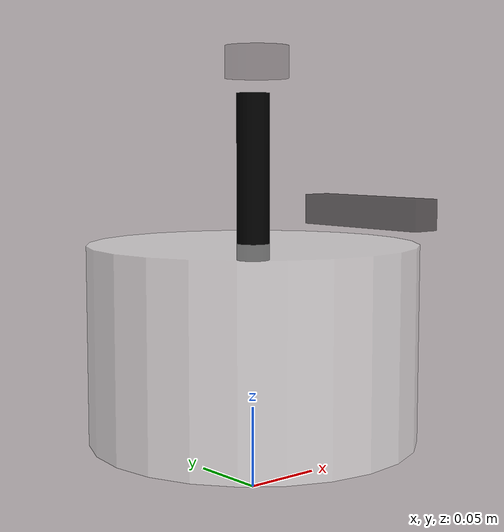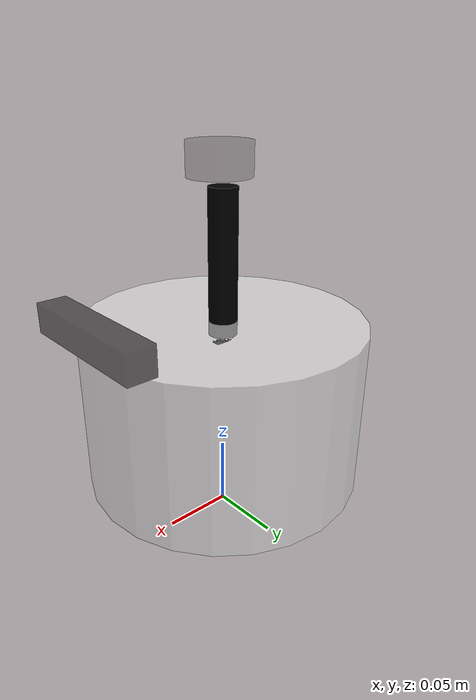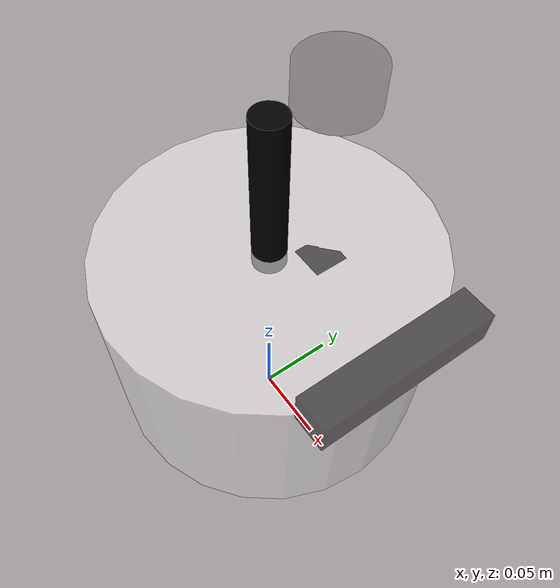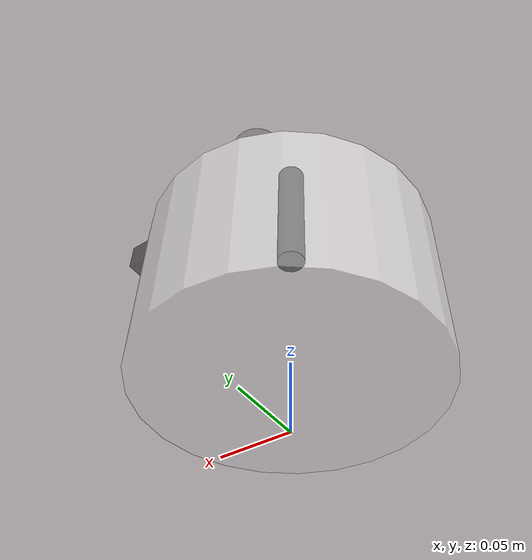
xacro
<?xml version="1.0"?>
<robot xmlns:xacro="http://www.ros.org/wiki/xacro" name="fishbot">
    <xacro:include filename="$(find hello_robot)/urdf/base.urdf.xacro"/>
    <xacro:include filename="$(find hello_robot)/urdf/sensor/imu.urdf.xacro"/>
    <xacro:include filename="$(find hello_robot)/urdf/sensor/camera.urdf.xacro"/>
    <xacro:include filename="$(find hello_robot)/urdf/sensor/laser.urdf.xacro"/>
    <!-- 基座 -->
    <xacro:base_xacro length="0.12" radius="0.1"/>
    <!-- IMU传感器 -->
    <xacro:imu_xacro imu_name="imu_up" xyz="0.0 0.0 0.03"/>
    <xacro:imu_xacro imu_name="imu_down" xyz="0.0 0.0 -0.03"/>
    <!-- 相机传感器 -->
    <xacro:camera_xacro xyz="0.1 0.0 0.075"/>
    <!-- 激光传感器 -->
    <xacro:laser_xacro xyz="0.0 0.0 0.10"/>
</robot>

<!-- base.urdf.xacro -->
<robot xmlns:xacro="http://www.ros.org/wiki/xacro">
    <xacro:include filename="$(find hello_robot)/urdf/common_inertial.xacro"/>
    <xacro:macro name="base_xacro" params="length radius">
        <link name="base_footprint"></link>
        <link name="base_link">
        <visual>
            <!-- 沿着自己几何中心的偏移和旋转量 -->
            <origin xyz="0.0 0.0 0.0" rpy="0.0 0.0 0.0" />
            <geometry>
                <cylinder radius="${radius}" length="${length}"/>
            </geometry>
            <material name="white">
                <color rgba="1.0 1.0 1.0 0.5"/>
            </material>
        </visual>
        <collision>
            <origin xyz="0.0 0.0 0.0" rpy="0.0 0.0 0.0" />
            <geometry>
                <cylinder radius="${radius}" length="${length}"/>
            </geometry>
        </collision>
        <xacro:cylinder_inertia m="1.0" r="${radius}" h="${length}"/>
     </link>
     <joint name="joint_name" type="fixed">
        <origin xyz="0.0 0.0 ${length/2 + 0.032 - 0.001}" rpy="0.0 0.0 0.0"/>
        <parent link="base_footprint"/>
        <child link="base_link"/>
     </joint>
    </xacro:macro>
</robot>

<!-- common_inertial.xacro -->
<robot xmlns:xacro="http://www.ros.org/wiki/xacro">
    <xacro:macro name="box_inertia" params="m w h d">
        <inertial>
            <mass value="${m}"/>
            <inertia
                ixx="${(1.0/12.0)*m*(h*h + d*d)}"
                ixy="0.0"
                ixz="0.0"
                iyy="${(1.0/12.0)*m*(w*w + d*d)}"
                iyz="0.0"
                izz="${(1.0/12.0)*m*(w*w + h*h)}"/>
        </inertial>
    </xacro:macro>
    <xacro:macro name="cylinder_inertia" params="m r h">
        <inertial>
            <mass value="${m}"/>
            <inertia
                ixx="${(1.0/12.0)*m*(3*r*r + h*h)}"
                ixy="0.0"
                ixz="0.0"
                iyy="${(1.0/12.0)*m*(3*r*r + h*h)}"
                iyz="0.0"
                izz="${(1.0/2.0)*m*r*r}"/>
        </inertial>
    </xacro:macro>
    <xacro:macro name="sphere_inertia" params="m r">
        <inertial>
            <mass value="${m}"/>
            <inertia
                ixx="${(2.0/5.0)*m*r*r}"
                ixy="0.0"
                ixz="0.0"
                iyy="${(2.0/5.0)*m*r*r}"
                iyz="0.0"
                izz="${(2.0/5.0)*m*r*r}"/>
        </inertial>
    </xacro:macro>
</robot>

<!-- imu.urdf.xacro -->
<robot xmlns:xacro="http://www.ros.org/wiki/xacro">
    <xacro:include filename="$(find hello_robot)/urdf/common_inertial.xacro"/>
    <xacro:macro name="imu_xacro" params="imu_name xyz">
        <link name="${imu_name}">
        <visual>
            <!-- 沿着自己几何中心的偏移和旋转量 -->
            <origin xyz="0.02 0.02 0.02" rpy="0.0 0.0 0.0" />
            <geometry>
                <box size="0.02 0.02 0.02"/>
            </geometry>
            <material name="black">
                <color rgba="0.0 0.0 0.0 0.5"/>
            </material>
        </visual>
        <collision>
            <origin xyz="0.02 0.02 0.02" rpy="0.0 0.0 0.0" />
            <geometry>
                <box size="0.02 0.02 0.02"/>
            </geometry>
        </collision>
        <xacro:box_inertia m="0.05" w="0.02" h="0.02" d="0.02"/>
     </link>
      <joint name="${imu_name}_joint" type="fixed">
          <parent link="base_link"/>
          <child link="${imu_name}"/>
        <origin xyz="${xyz}" rpy="0.0 0.0 0.0"/>
     </joint>
    </xacro:macro>
</robot>

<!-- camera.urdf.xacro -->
<robot xmlns:xacro="http://www.ros.org/wiki/xacro">
    <xacro:include filename="$(find hello_robot)/urdf/common_inertial.xacro"/>
    <xacro:macro name="camera_xacro" params="xyz">
        <link name="camera_link">
        <visual>
            <!-- 沿着自己几何中心的偏移和旋转量 -->
            <origin xyz="0.0 0.0 0.0" rpy="0.0 0.0 0.0" />
            <geometry>
                <box size="0.02 0.1 0.02"/>
            </geometry>
            <material name="black">
                <color rgba="0.0 0.0 0.0 0.5"/>
            </material>
        </visual>
        <collision>
            <origin xyz="0.0 0.0 0.0" rpy="0.0 0.0 0.0" />
            <geometry>
                <box size="0.02 0.1 0.02"/>
            </geometry>
        </collision>
        <xacro:box_inertia m="0.05" w="0.02" h="0.1" d="0.02"/>
     </link>
     <joint name="camera_joint" type="fixed">
        <parent link="base_link"/>
        <child link="camera_link"/>
        <origin xyz="${xyz}" rpy="0.0 0.0 0.0"/>
     </joint>
    </xacro:macro>
</robot>

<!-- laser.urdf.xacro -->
<robot xmlns:xacro="http://www.ros.org/wiki/xacro">
    <xacro:include filename="$(find hello_robot)/urdf/common_inertial.xacro"/>
    <xacro:macro name="laser_xacro" params="xyz">
        <link name="laser_cylinder_link">
            <visual>
                <origin xyz="0.0 0.0 0.0" rpy="0.0 0.0 0.0"/>
                <geometry>
                    <cylinder radius="0.01" length="0.10"/>
                </geometry>
                <material name="black">
                    <color rgba="0.0 0.0 0.0 1.0"/>
                </material>
            </visual>
            <collision>
                <origin xyz="0.0 0.0 0.0" rpy="0.0 0.0 0.0"/>
                <geometry>
                    <cylinder radius="0.01" length="0.10"/>
                </geometry>
            </collision>
            <xacro:cylinder_inertia m="0.1" r="0.01" h="0.10"/>
        </link>
        <link name="laser_link">
        <visual>
            <!-- 沿着自己几何中心的偏移和旋转量 -->
            <origin xyz="0.02 0.02 0.02" rpy="0.0 0.0 0.0" />
            <geometry>
                <cylinder radius="0.02" length="0.02"/>
            </geometry>
            <material name="black">
                <color rgba="0.0 0.0 0.0 0.1"/>
            </material>
        </visual>
        <collision>
            <origin xyz="0.02 0.02 0.02" rpy="0.0 0.0 0.0" />
            <geometry>
                <cylinder radius="0.02" length="0.02"/>
            </geometry>
        </collision>
        <xacro:cylinder_inertia m="0.1" r="0.02" h="0.02"/>
     </link>
     <joint name="laser_joint" type="fixed">
        <parent link="laser_cylinder_link"/>
        <child link="laser_link"/>
        <origin xyz="0 0 0.05" rpy="0.0 0.0 0.0"/>
     </joint>
     <joint name="laser_cylinder_joint" type="fixed">
        <parent link="base_link"/>
        <child link="laser_cylinder_link"/>
        <origin xyz="${xyz}" rpy="0.0 0.0 0.0"/>
     </joint>
    </xacro:macro>
</robot>
